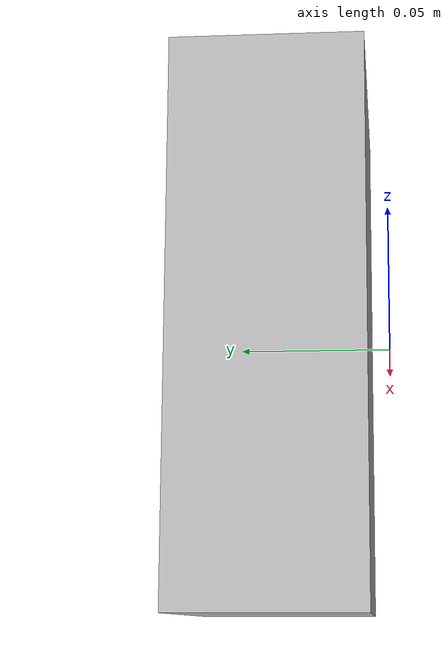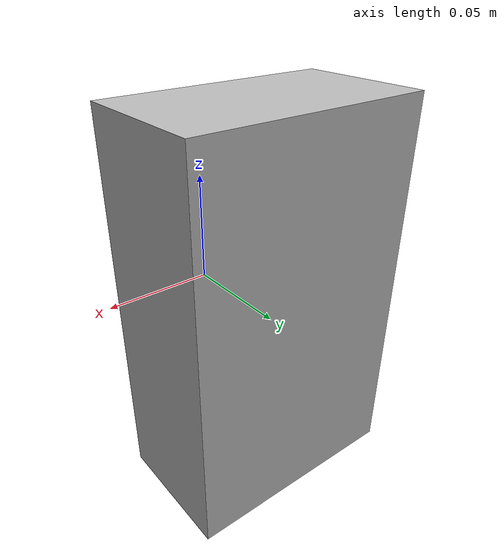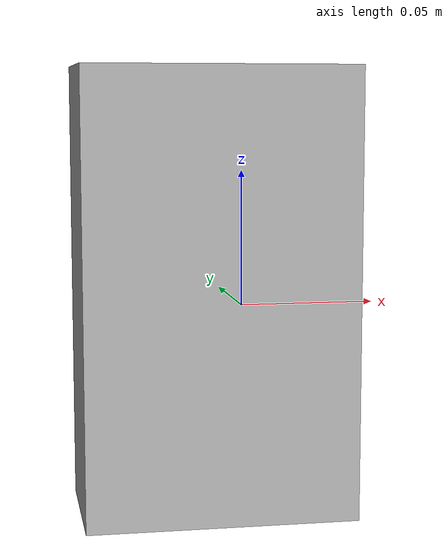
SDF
<?xml version="1.0" ?>
<sdf version="1.4">
  <model name="shelf1_box1_8">
    <link name="body">
      <pose>0 0 0 0 0 0</pose>
      <inertial>
        <pose>  -0.005000   0.037000   0.000500 0 0 0</pose>
        <mass>0.5</mass>
        <inertia>
          <ixx>0.01</ixx>
          <ixy>0</ixy>
          <ixz>0</ixz>
          <iyy>0.01</iyy>
          <iyz>0</iyz>
          <izz>0.01</izz>
        </inertia>
      </inertial>
      <collision name="collision">
        <geometry>
          <mesh>
            <uri>model://bookshelf/shelf1_items/box1_8/box1_8.dae</uri>
          </mesh>
        </geometry>
      </collision>
      <visual name="visual">
        <geometry>
          <mesh>
            <uri>model://bookshelf/shelf1_items/box1_8/box1_8.dae</uri>
          </mesh>
        </geometry>
      </visual>
    </link>
  </model>
</sdf>
